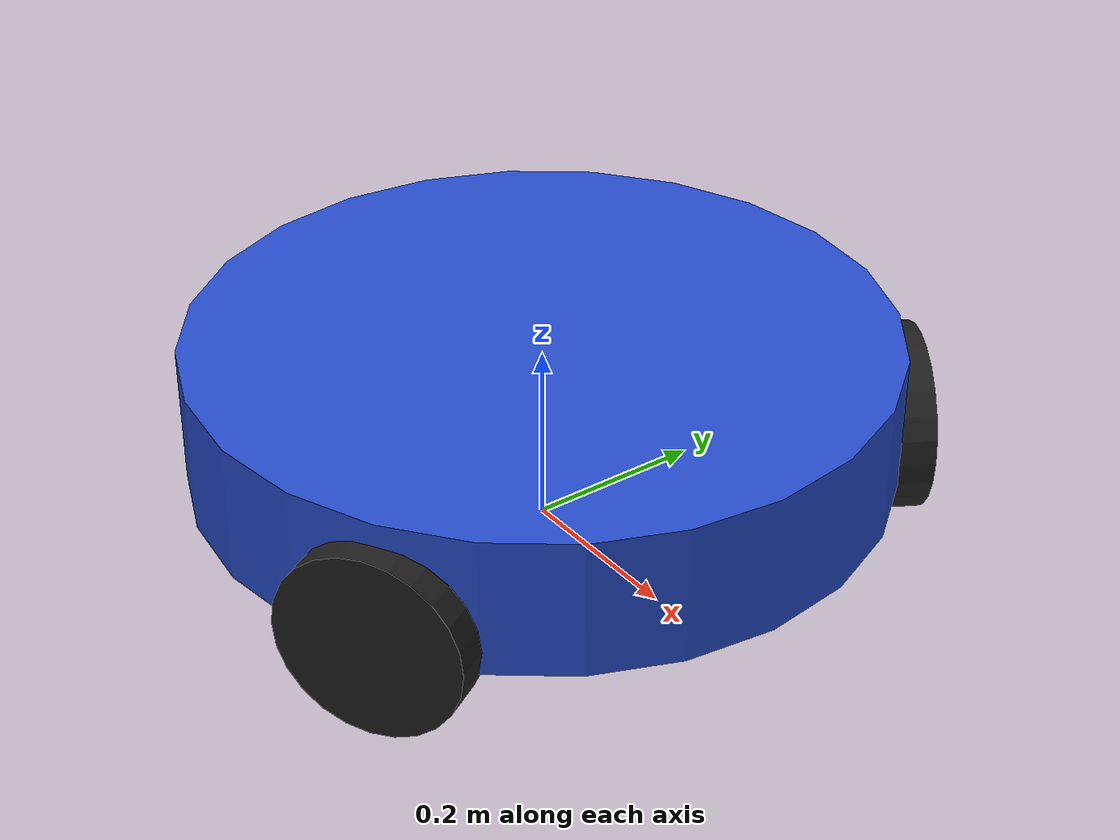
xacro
<?xml version="1.0" encoding="UTF-8"?>
<robot xmlns:xacro="http://www.ros.org/wiki/xacro">

    <xacro:include filename="omni_wheel.urdf.xacro" />

    <!-- Rough Robot size estimates, eventually replaced with CAD dimensions later. -->
    <xacro:property name="base_mass" value="8.0" />
    <xacro:property name="base_radius" value="0.381" />
    <xacro:property name="base_height" value="0.1524" />
    <xacro:property name="ground_offset" value="0.15" />

    <!-- Ground reference frame used by navigation and other ROS tools. -->
    <link name="base_footprint" />

    <!-- Raises the chassis above the ground reference -->
    <joint name="base_footprint_joint" type="fixed">
        <parent link="base_footprint" />
        <child link="base_link" />
        <origin xyz="0.0 0.0 ${ground_offset}" rpy="0 0 0" />
    </joint>

    <link name="base_link">
        <!-- Visual Cylinder of bot -->
        <visual>
            <origin xyz="0 0 0" rpy="0 0 0" />
            <geometry>
                <cylinder radius="${base_radius}" length="${base_height}" />
            </geometry>
            <material name="blue" />
        </visual>

        <collision>
            <origin xyz="0 0 0" rpy="0 0 0" />
            <geometry>
                <cylinder radius="${base_radius}" length="${base_height}" />
            </geometry>
        </collision>

        <!-- Inertia of bot is an estimate update the mass and dimensions from CAD later. -->
        <xacro:inertial_cylinder mass="${base_mass}" length="${base_height}" radius="${base_radius}">
            <origin xyz="0 0 0" rpy="0 0 0" />
        </xacro:inertial_cylinder>
    </link>

    <!-- Three wheels spaced around the chassis -->
    <xacro:omni_wheel suffix="1" parent="base_link" x="${base_radius / 2}"
        y="${base_radius * 0.866025}" yaw="2.618" />

    <xacro:omni_wheel suffix="2" parent="base_link" x="${base_radius / 2}"
        y="${-base_radius * 0.866025}" yaw="0.524" />

    <xacro:omni_wheel suffix="3" parent="base_link" x="-${base_radius}"
        y="0.0" yaw="1.5708" />

</robot>

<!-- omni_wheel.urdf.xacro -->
<robot xmlns:xacro="http://www.ros.org/wiki/xacro">
    <!-- TODO PARAMTERIZE MORE OF THE MEASUREMENTS -->

    <!-- Reusable wheel link and joint. Dimensions are placeholders until CAD is ready. -->
    <!-- This macro can be reused by putting using the line below in the base of the robot -->

    <xacro:macro name="omni_wheel" params="suffix parent x y yaw">
        <xacro:property name="wheel_mass" value="0.5" />
        <xacro:property name="wheel_radius" value="0.1016" />
        <xacro:property name="wheel_length" value="0.0508" />

        <joint name="omni_wheel_joint_${suffix}" type="continuous">
            <parent link="${parent}" />
            <child link="omni_wheel_link_${suffix}" />
            <!-- Defining center of the wheel's joint -->
            <origin xyz="${x} ${y} -.05" rpy="0 0 ${yaw}" />
            <!-- The wheel spins around this axis. -->
            <axis xyz="0 1 0" />
        </joint>

        <link name="omni_wheel_link_${suffix}">
            <visual>
                <!-- URDF cylinders use local Z as their length axis rotate it to align the axle with Y. -->
                <origin xyz="0 0 0" rpy="1.5708 0 0" />
                <geometry>
                    <cylinder radius="${wheel_radius}" length="${wheel_length}" />
                </geometry>
                <material name="black" />
            </visual>

            <collision>
                <origin xyz="0 0 0" rpy="1.5708 0 0" />
                <geometry>
                    <cylinder radius="${wheel_radius}" length="${wheel_length}" />
                </geometry>
            </collision>

            <!-- Cylinder estimate, replace with measured values when the wheel is finalized. -->
            <xacro:inertial_cylinder mass="${wheel_mass}" length="${wheel_length}" radius="${wheel_radius}">
                <origin xyz="0 0 0" rpy="1.5708 0 0" />
            </xacro:inertial_cylinder>

        </link>

    </xacro:macro>

</robot>
